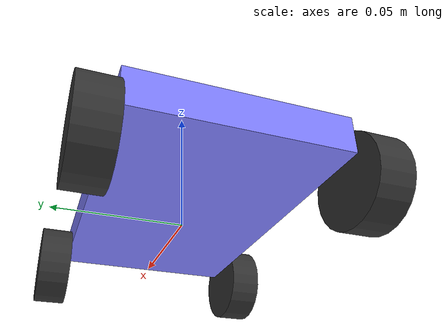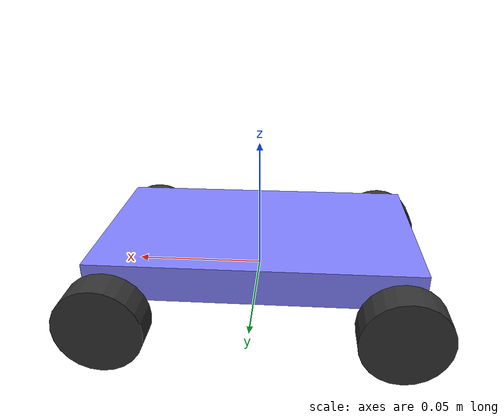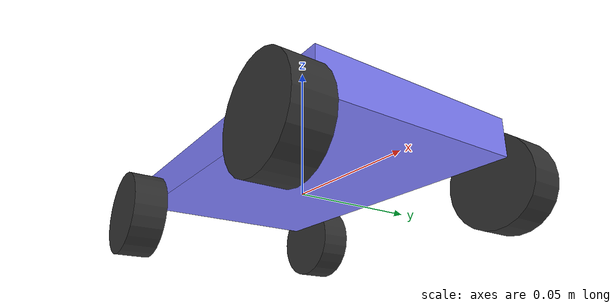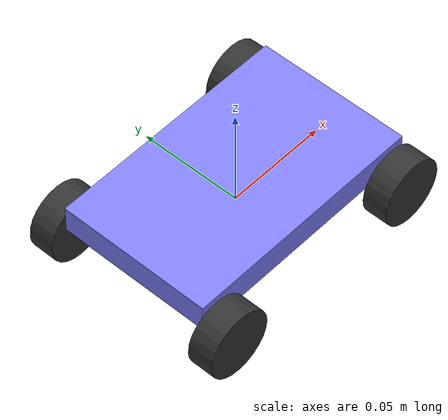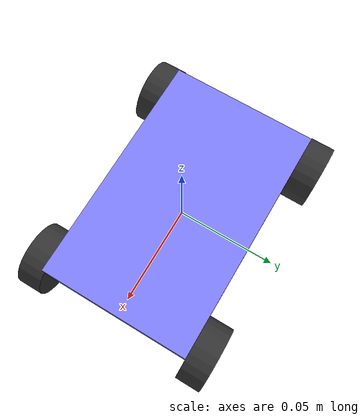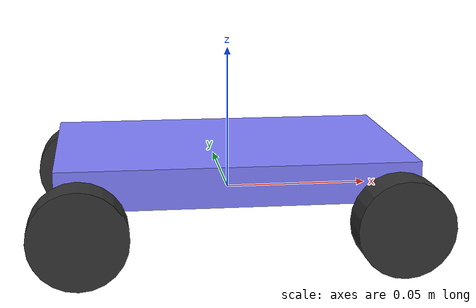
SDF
<?xml version="1.0" ?>
<sdf version="1.8">
    <model name='diff_drive'>
      <link name='chassis'>
        <pose>0 0 0.01 0 -0 0</pose>
        <inertial>
          <mass>0.5</mass>
          <inertia>
            <ixx>0.0002418973</ixx>
            <ixy>0</ixy>
            <ixz>0</ixz>
            <iyy>0.0006075223</iyy>
            <iyz>0</iyz>
            <izz>0.000834375</izz>
          </inertia>
        </inertial>
        <visual name='visual_chassis'>
          <geometry>
            <box>
              <size>0.12 0.075 0.0134363</size>
            </box>
          </geometry>
          <material>
            <ambient>0.5 0.5 1.0 1</ambient>
            <diffuse>0.5 0.5 1.0 1</diffuse>
            <specular>0.0 0.0 1.0 1</specular>
          </material>
        </visual>
        <collision name='collision_chassis'>
          <geometry>
            <box>
              <size>0.12 0.075 0.0134363</size>
            </box>
          </geometry>
        </collision>
      </link>

      <link name='left_wheel'>
        <pose>-0.0525 0.04375 -0.00271815 -1.5707 0 0</pose>
        <inertial>
          <mass>0.02</mass>
          <inertia>
            <ixx>0.00000158073</ixx>
            <ixy>0</ixy>
            <ixz>0</ixz>
            <iyy>0.00000158073</iyy>
            <iyz>0</iyz>
            <izz>0.00000264063</izz>
          </inertia>
        </inertial>
        <visual name='visual_left_wheel'>
          <geometry>
            <cylinder>
              <radius>0.01625</radius>
              <length>0.0125</length>
            </cylinder>
          </geometry>
          <material>
            <ambient>0.2 0.2 0.2 1</ambient>
            <diffuse>0.2 0.2 0.2 1</diffuse>
            <specular>0.2 0.2 0.2 1</specular>
          </material>
        </visual>
        <collision name='collision_left_wheel'>
          <geometry>
            <cylinder>
              <radius>0.01625</radius>
              <length>0.0125</length>
            </cylinder>
          </geometry>
          <surface>
            <friction>
              <ode>
                <!-- Adjust these as needed -->
                <mu>1.0</mu>
                <mu2>1.0</mu2>
                <slip1>0.2</slip1>
                <slip2>0.2</slip2>
              </ode>
            </friction>
          </surface>
        </collision>
      </link>

      <link name='right_wheel'>
        <pose>-0.0525 -0.04375 -0.00271815 -1.5707 0 0</pose>
        <inertial>
          <mass>0.02</mass>
          <inertia>
            <ixx>0.00000158073</ixx>
            <ixy>0</ixy>
            <ixz>0</ixz>
            <iyy>0.00000158073</iyy>
            <iyz>0</iyz>
            <izz>0.00000264063</izz>
          </inertia>
        </inertial>
        <visual name='visual_right_wheel'>
          <geometry>
            <cylinder>
              <radius>0.01625</radius>
              <length>0.0125</length>
            </cylinder>
          </geometry>
          <material>
            <ambient>0.2 0.2 0.2 1</ambient>
            <diffuse>0.2 0.2 0.2 1</diffuse>
            <specular>0.2 0.2 0.2 1</specular>
          </material>
        </visual>
        <collision name='collision_right_wheel'>
          <geometry>
            <cylinder>
              <radius>0.01625</radius>
              <length>0.0125</length>
            </cylinder>
          </geometry>
          <surface>
            <friction>
              <ode>
                <!-- Adjust these as needed -->
                <mu>1.0</mu>
                <mu2>1.0</mu2>
                <slip1>0.2</slip1>
                <slip2>0.2</slip2>
              </ode>
            </friction>
          </surface>
        </collision>
      </link>

      <link name='left_wheel_front'>
        <pose>0.0525 0.04375 -0.00271815 -1.5707 0 0</pose>
        <inertial>
          <mass>0.02</mass>
          <inertia>
            <ixx>0.00000158073</ixx>
            <ixy>0</ixy>
            <ixz>0</ixz>
            <iyy>0.00000158073</iyy>
            <iyz>0</iyz>
            <izz>0.00000264063</izz>
          </inertia>
        </inertial>
        <visual name='visual_left_wheel_front'>
          <geometry>
            <cylinder>
              <radius>0.01625</radius>
              <length>0.0125</length>
            </cylinder>
          </geometry>
          <material>
            <ambient>0.2 0.2 0.2 1</ambient>
            <diffuse>0.2 0.2 0.2 1</diffuse>
            <specular>0.2 0.2 0.2 1</specular>
          </material>
        </visual>
        <collision name='collision_left_wheel_front'>
          <geometry>
            <cylinder>
              <radius>0.01625</radius>
              <length>0.0125</length>
            </cylinder>
          </geometry>
          <surface>
            <friction>
              <ode>
                <!-- Adjust these as needed -->
                <mu>1.0</mu>
                <mu2>1.0</mu2>
                <slip1>0.2</slip1>
                <slip2>0.2</slip2>
              </ode>
            </friction>
          </surface>
        </collision>
      </link>

      <link name='right_wheel_front'>
        <pose>0.0525 -0.04375 -0.00271815 -1.5707 0 0</pose>
        <inertial>
          <mass>0.02</mass>
          <inertia>
            <ixx>0.00000158073</ixx>
            <ixy>0</ixy>
            <ixz>0</ixz>
            <iyy>0.00000158073</iyy>
            <iyz>0</iyz>
            <izz>0.00000264063</izz>
          </inertia>
        </inertial>
        <visual name='visual_right_wheel_front'>
          <geometry>
            <cylinder>
              <radius>0.01625</radius>
              <length>0.0125</length>
            </cylinder>
          </geometry>
          <material>
            <ambient>0.2 0.2 0.2 1</ambient>
            <diffuse>0.2 0.2 0.2 1</diffuse>
            <specular>0.2 0.2 0.2 1</specular>
          </material>
        </visual>
        <collision name='collision_right_wheel_front'>
          <geometry>
            <cylinder>
              <radius>0.01625</radius>
              <length>0.0125</length>
            </cylinder>
          </geometry>
          <surface>
            <friction>
              <ode>
                <!-- Adjust these as needed -->
                <mu>1.0</mu>
                <mu2>1.0</mu2>
                <slip1>0.2</slip1>
                <slip2>0.2</slip2>
              </ode>
            </friction>
          </surface>
        </collision>
      </link>

      <joint name='left_wheel_joint' type='revolute'>
        <parent>chassis</parent>
        <child>left_wheel</child>
        <axis>
          <xyz>0 0 1</xyz>
          <limit>
            <lower>-1.79769e+308</lower>
            <upper>1.79769e+308</upper>
          </limit>
        </axis>
      </joint>

      <joint name='left_wheel_front_joint' type='revolute'>
        <parent>chassis</parent>
        <child>left_wheel_front</child>
        <axis>
          <xyz>0 0 1</xyz>
          <limit>
            <lower>-1.79769e+308</lower>
            <upper>1.79769e+308</upper>
          </limit>
        </axis>
      </joint>

      <joint name='right_wheel_joint' type='revolute'>
        <parent>chassis</parent>
        <child>right_wheel</child>
        <axis>
          <xyz>0 0 1</xyz>
          <limit>
            <lower>-1.79769e+308</lower>
            <upper>1.79769e+308</upper>
          </limit>
        </axis>
      </joint>

      <joint name='right_wheel_front_joint' type='revolute'>
        <parent>chassis</parent>
        <child>right_wheel_front</child>
        <axis>
          <xyz>0 0 1</xyz>
          <limit>
            <lower>-1.79769e+308</lower>
            <upper>1.79769e+308</upper>
          </limit>
        </axis>
      </joint>

      <plugin
        filename="ignition-gazebo-diff-drive-system"
        name="ignition::gazebo::systems::DiffDrive">
        <left_joint>left_wheel_joint</left_joint>
        <left_joint>left_wheel_front_joint</left_joint>
        <right_joint>right_wheel_joint</right_joint>
        <right_joint>right_wheel_front_joint</right_joint>
        <wheel_radius>0.01625</wheel_radius>

        <!-- 🛠️ Add Odometry & TF Configuration -->
        <odom_publish_frequency>50</odom_publish_frequency>
        <odom_topic>/diff_drive/odometry</odom_topic>  <!-- Ensure odom topic is published -->
        <tf_topic>/tf</tf_topic>  <!-- Ensure transforms are published -->

        <!-- 🔥 Fix Missing TF Frames -->
        <frame_id>diff_drive/odom</frame_id>  <!-- Set odometry frame -->
        <child_frame_id>chassis</child_frame_id>  <!-- Connects odometry to chassis -->

        <max_linear_acceleration>0.1</max_linear_acceleration>
        <min_linear_acceleration>-0.2</min_linear_acceleration>
        <max_linear_velocity>0.5</max_linear_velocity>
        <min_linear_velocity>-0.5</min_linear_velocity>

        <max_angular_acceleration>0.1</max_angular_acceleration>
        <min_angular_acceleration>-0.1</min_angular_acceleration>
        <max_angular_velocity>0.1</max_angular_velocity>
        <min_angular_velocity>-0.1</min_angular_velocity>
      </plugin>
    </model>
</sdf>
